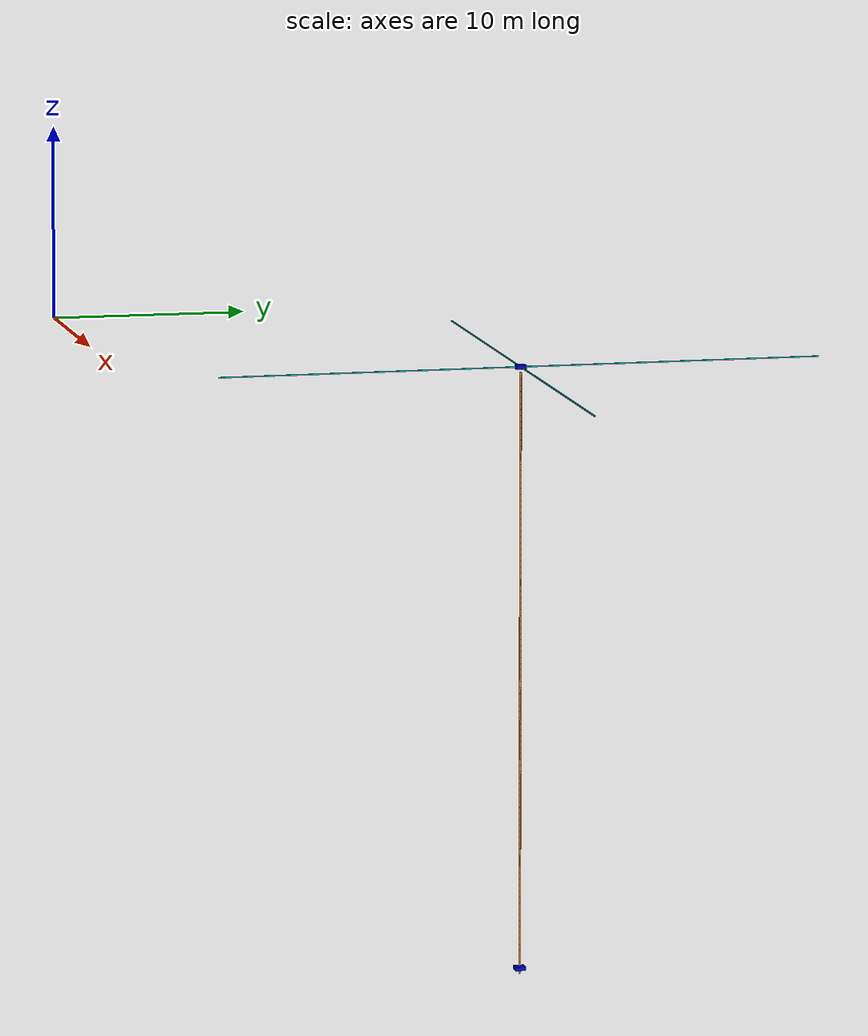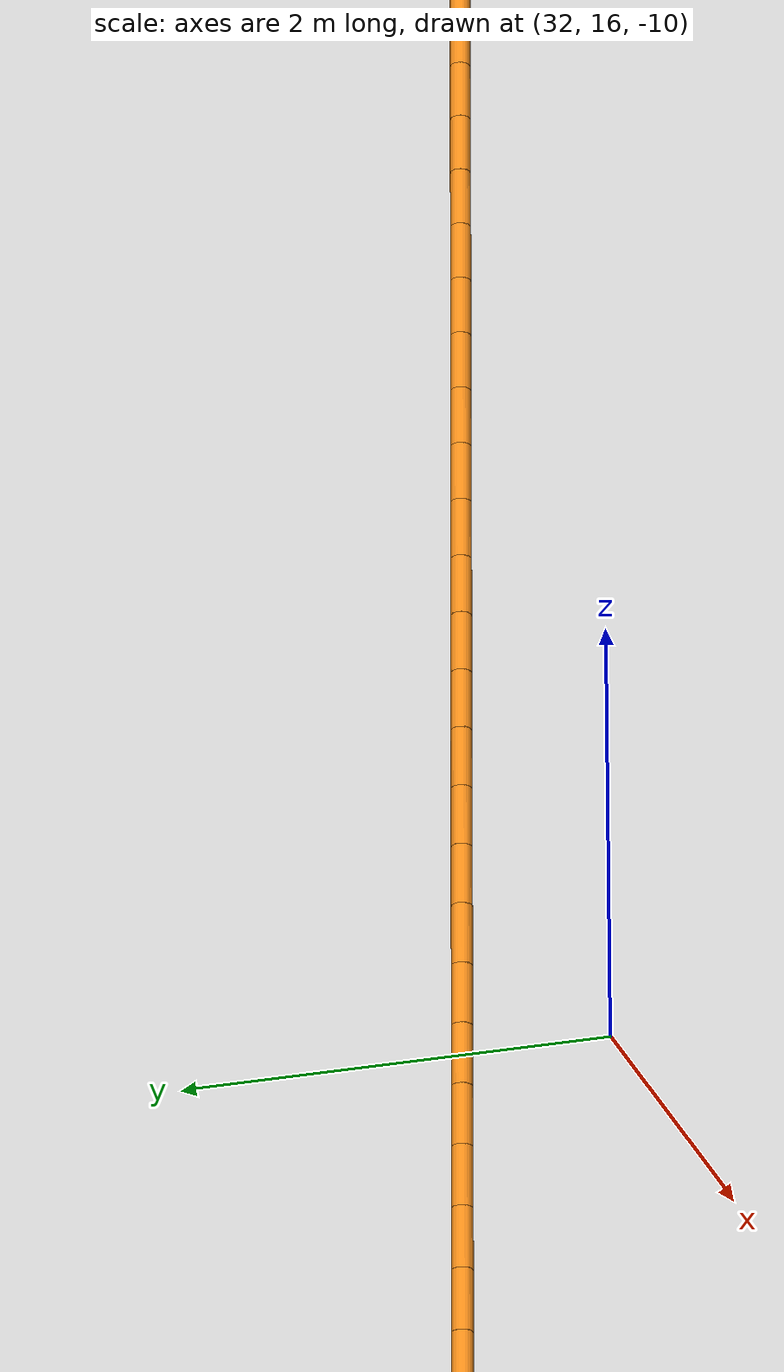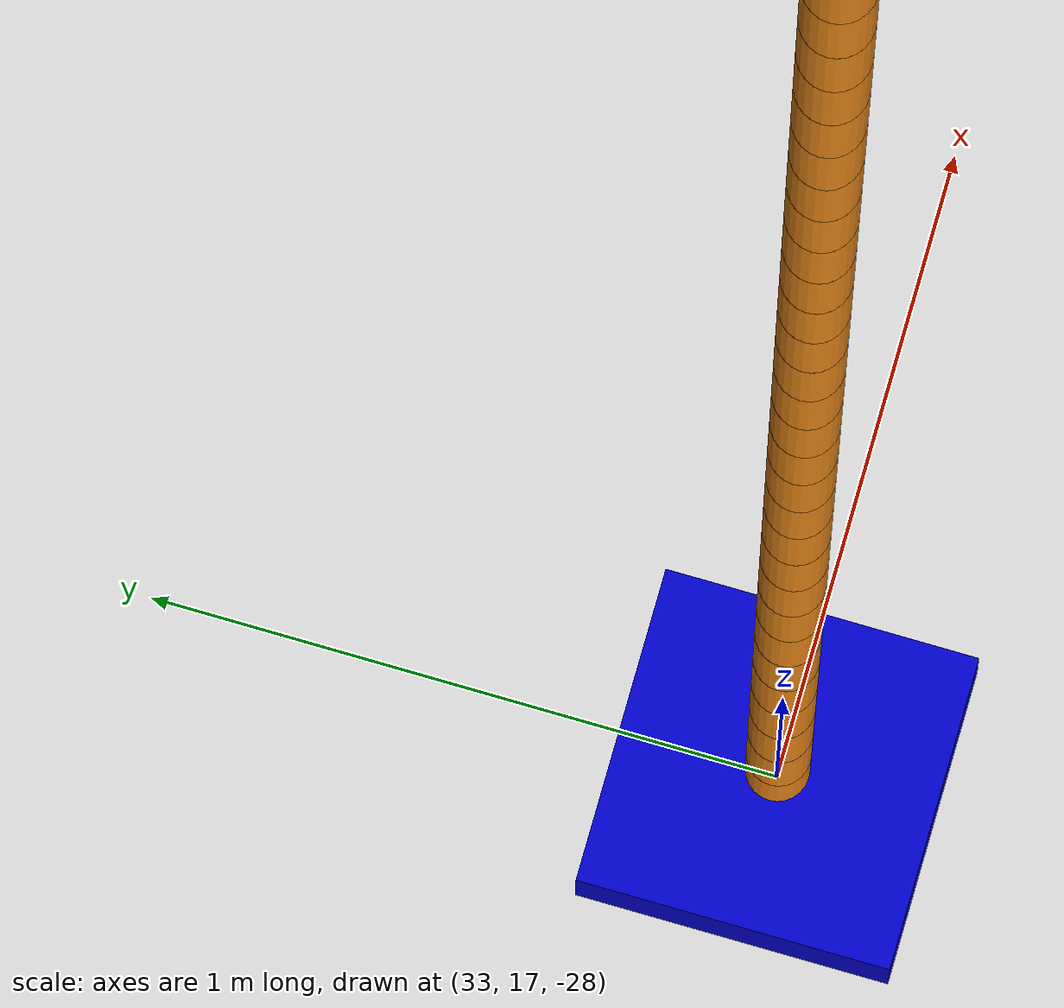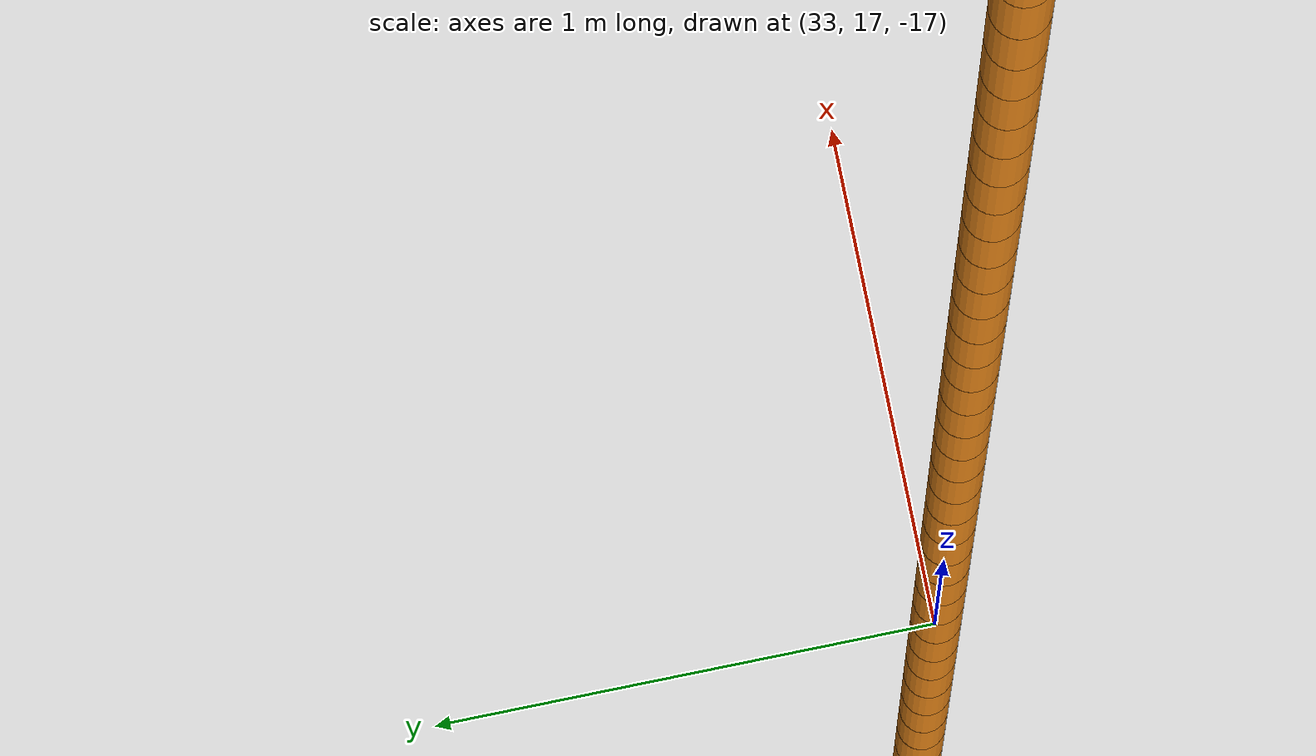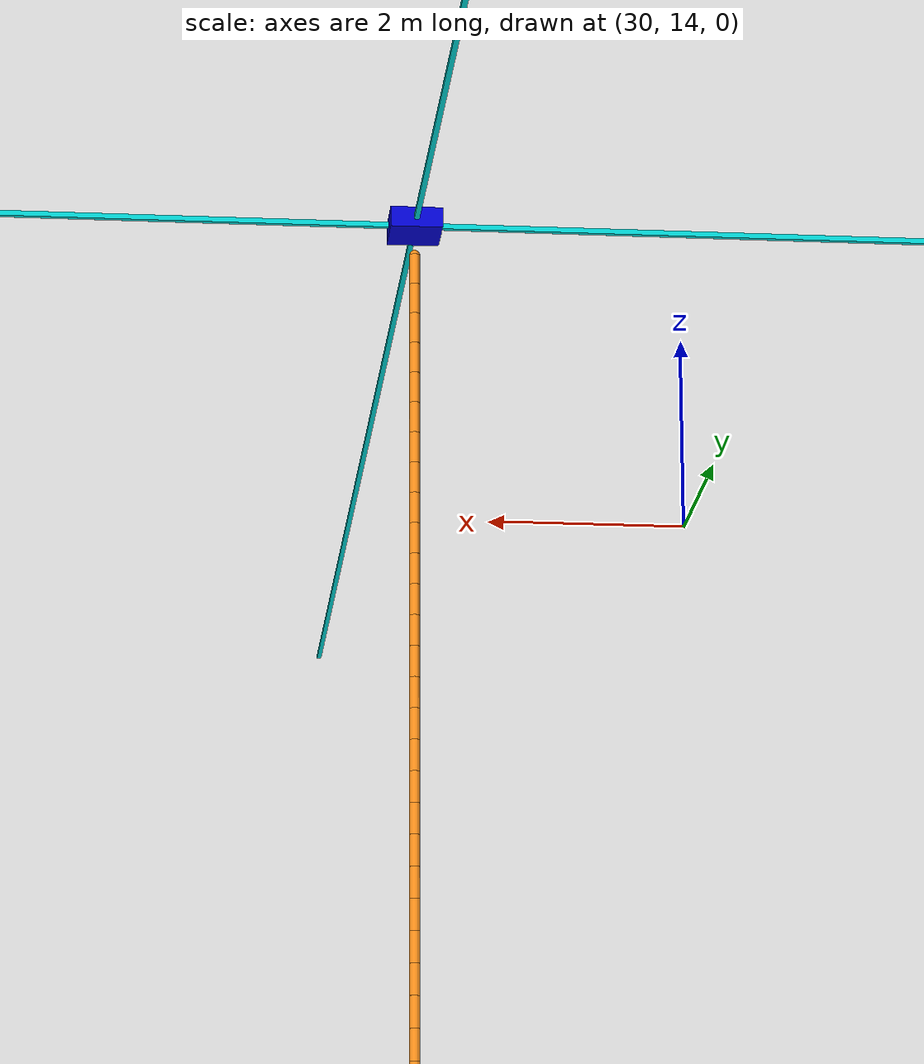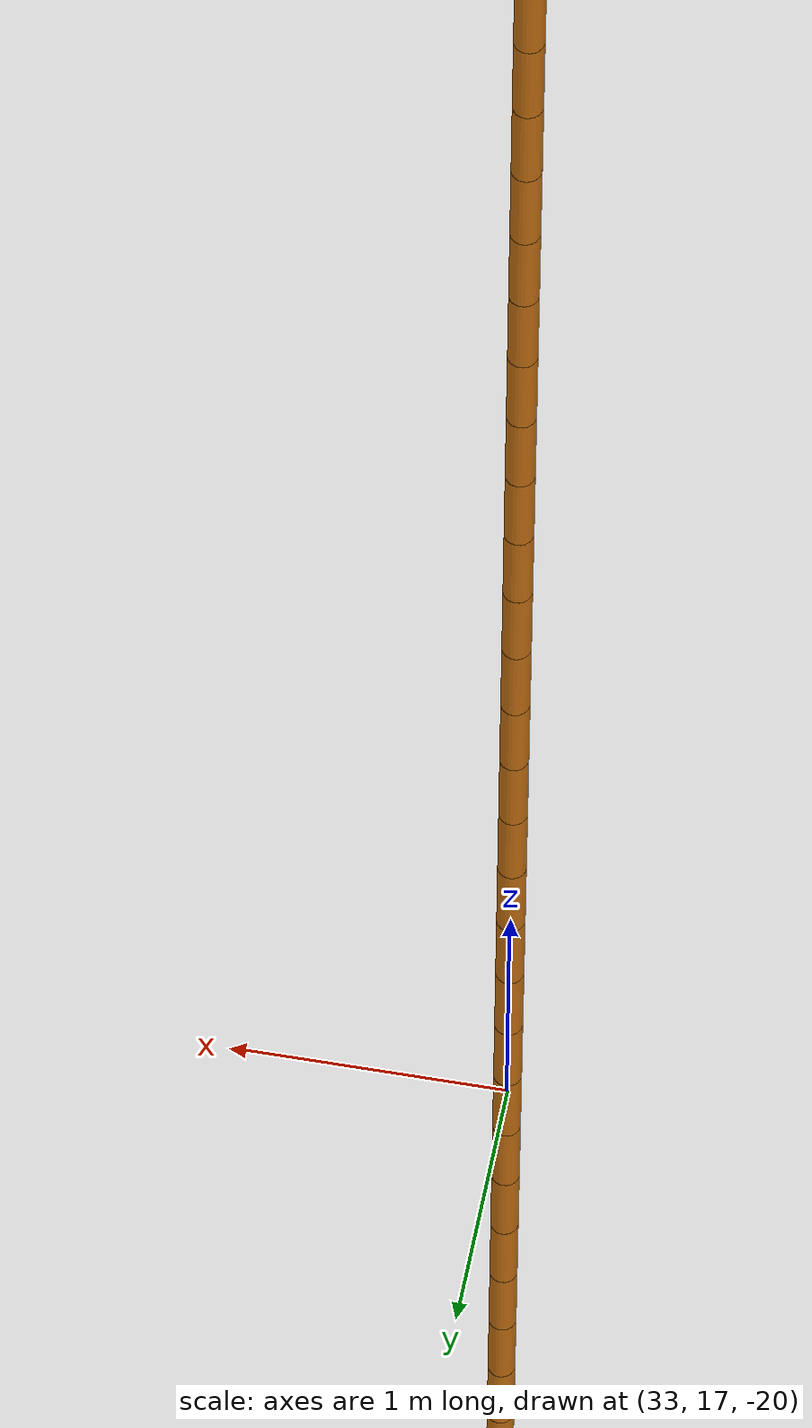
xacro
<?xml version="1.0" ?>
<!-- |    This document was autogenerated by xacro from cartpole.xacro.urdf            | -->
<!-- |    EDITING THIS FILE BY HAND IS NOT RECOMMENDED                                 | -->
<robot name="cartopole" xmlns:xacro="http://www.ros.org/wiki/xacro">
  <xacro:macro name="cable" params="sphere_name joint_nameA joint_nameB link_name link_name_pre count" >

    <link name="${sphere_name}">
      <inertial>
        <origin rpy="0.000000 0.000000 0.000000" xyz="0.000000 0.000000 0.000000"/>
        <mass value="0.0100000"/>
        <inertia ixx="0.010000" ixy="0.000000" ixz="0.000000" iyy="0.010000" iyz="0.000000" izz="0.010000"/>
      </inertial>
      <visual>
        <origin rpy="0.000000 0.000000 0.000000" xyz="0.000000 0.000000 0.000000"/>
        <geometry>
          <sphere radius="0.0500"/>
        </geometry>
      </visual>
      <collision name="${sphere_name}">
        <geometry>
          <sphere radius="0.0500"/>
        </geometry>
      </collision>
    </link>

    <joint name="${joint_nameA}" type="revolute">

      <child link="${sphere_name}"/>
      <parent link="${link_name_pre}"/>
      <axis xyz="0.000000 1.570000 0.000000"/>
      <limit lower="-1.700000" upper="1.700000" effort="1000.0"  velocity="30" stiffness="70000"/>
      <dynamics damping="0.100000" friction="0.100000"/>
      <origin xyz="0.000000 0.000000 ${count}"/>
    </joint>

    <link name="${link_name}">
      <inertial>
        <origin rpy="0.000000 -0.000000 0.000000" xyz="0.000000 0.000000 0.000000"/>
        <mass value="0.0100000"/>
        <inertia ixx="0.010000" ixy="0.000000" ixz="0.000000" iyy="0.010000" iyz="0.000000" izz="0.010000"/>
      </inertial>
      <visual>
        <origin rpy="0.000000 0.00000 0.000000" xyz="0.000000 0.000000 ${count/2}"/>
        <geometry>
          <cylinder length="${-count}" radius="0.0500"/>
        </geometry>
      </visual>
      <collision name="${link_name}">
        <origin rpy="0.000000 0.00000 0.000000" xyz="0.000000 0.000000 ${count/2}"/>
        <geometry>
          <cylinder length="${-count}" radius="0.0500"/>
        </geometry>
      </collision>
    </link>
    <joint name="${joint_nameB}" type="revolute">

      <child link="${link_name}"/>
      <parent link="${sphere_name}"/>
      <axis xyz="1.570000 0.000000 0.000000"/>
      <limit lower="-1.700000" upper="1.700000" effort="1000.0"  velocity="30" stiffness="70000"/>
      <dynamics damping="0.100000" friction="0.100000"/>
      <origin xyz="0.000000 0.000000 0.00000"/>
    </joint>
    <gazebo reference="${link_name}">
      <material>Gazebo/Orange</material>
    </gazebo>
    <gazebo reference="${sphere_name}">
      <material>Gazebo/Orange</material>
    </gazebo>
  </xacro:macro>

  <link name="world"/>
  <link name="slideBar">
    <visual>
      <geometry>
        <box size="30 0.05 0.05"/>
      </geometry>
      <origin xyz="0 0 0"/>
      <material name="green">
        <color rgba="0 0.8 .8 1"/>
      </material>
    </visual>
    <inertial>
      <mass value="10"/>
      <inertia ixx="1.0" ixy="0.0" ixz="0.0" iyy="1.0" iyz="0.0" izz="1.0"/>
    </inertial>
  </link>
  <link name="yslideBar">

    <visual>
      <geometry>
        <box size="30 0.05 0.05"/>
      </geometry>
      <origin xyz="0 0 0"/>
      <material name="green">
        <color rgba="0 0.8 .8 1"/>
      </material>
    </visual>
    <inertial>
      <mass value="10"/>
      <inertia ixx="1.0" ixy="0.0" ixz="0.0" iyy="1.0" iyz="0.0" izz="1.0"/>
    </inertial>
  </link>

  <link name="cart">
    <visual>
      <geometry>
        <box size="0.5 0.5 0.2"/>
      </geometry>
      <origin xyz="0 0 0"/>
      <material name="blue">
        <color rgba="0 0 .8 1"/>
      </material>
    </visual>
    <inertial>
      <mass value="1"/>
      <inertia ixx="1.0" ixy="0.0" ixz="0.0" iyy="1.0" iyz="0.0" izz="1.0"/>
    </inertial>
  </link>
  <link name="tail">

    <visual>
      <geometry>
        <box size="0.5 0.5 0.2"/>
      </geometry>
      <origin xyz="0 0 0"/>
      <material name="blue">
        <color rgba="0 0 .8 1"/>
      </material>
    </visual>
    <inertial>
      <mass value="0.1"/>
      <inertia ixx="1.0" ixy="0.0" ixz="0.0" iyy="1.0" iyz="0.0" izz="1.0"/>
    </inertial>
  </link>
  <joint name="world_to_base" type="fixed">
    <origin rpy="0 0 0" xyz="33 17 2"/>
    <parent link="world"/>
    <child link="slideBar"/>
  </joint>
  <joint name="x_to_y" type="prismatic">
    <axis xyz="1 0 0"/>
    <origin xyz="0.0 0.0 0.0" rpy="0 0 0"/>
    <parent link="yslideBar"/>
    <child link="cart"/>
    <limit effort="1000.0" lower="-15" upper="15" velocity="30"/>
    <dynamics damping="100.0" friction="10.0"/>
  </joint>
  <joint name="slider_to_cart" type="prismatic">
    <axis xyz="0 1 0"/>
    <origin xyz="0.0 0.0 0.0" rpy="0 0 1.57"/>
    <parent link="slideBar"/>
    <child link="yslideBar"/>
    <limit effort="1000.0" lower="-15" upper="15" velocity="30"/>
    <dynamics damping="100.0" friction="10.0"/>
  </joint>

  <joint name="tail_joint" type="fixed">
    <origin rpy="0 0 0" xyz="0 0 0"/>
    <parent link="link100"/>
    <child link="tail"/>
  </joint>

<xacro:cable	sphere_name=	"sphere1"	joint_nameA=	"jointA1"	joint_nameB=	"jointB1"	link_name=	"link1"	link_name_pre=	"cart"	count="-0.3"/>
<xacro:cable	sphere_name=	"sphere2"	joint_nameA=	"jointA2"	joint_nameB=	"jointB2"	link_name=	"link2"	link_name_pre=	"link1"	count="-0.3"/>
<xacro:cable	sphere_name=	"sphere3"	joint_nameA=	"jointA3"	joint_nameB=	"jointB3"	link_name=	"link3"	link_name_pre=	"link2"	count="-0.3"/>
<xacro:cable	sphere_name=	"sphere4"	joint_nameA=	"jointA4"	joint_nameB=	"jointB4"	link_name=	"link4"	link_name_pre=	"link3"	count="-0.3"/>
<xacro:cable	sphere_name=	"sphere5"	joint_nameA=	"jointA5"	joint_nameB=	"jointB5"	link_name=	"link5"	link_name_pre=	"link4"	count="-0.3"/>
<xacro:cable	sphere_name=	"sphere6"	joint_nameA=	"jointA6"	joint_nameB=	"jointB6"	link_name=	"link6"	link_name_pre=	"link5"	count="-0.3"/>
<xacro:cable	sphere_name=	"sphere7"	joint_nameA=	"jointA7"	joint_nameB=	"jointB7"	link_name=	"link7"	link_name_pre=	"link6"	count="-0.3"/>
<xacro:cable	sphere_name=	"sphere8"	joint_nameA=	"jointA8"	joint_nameB=	"jointB8"	link_name=	"link8"	link_name_pre=	"link7"	count="-0.3"/>
<xacro:cable	sphere_name=	"sphere9"	joint_nameA=	"jointA9"	joint_nameB=	"jointB9"	link_name=	"link9"	link_name_pre=	"link8"	count="-0.3"/>
<xacro:cable	sphere_name=	"sphere10"	joint_nameA=	"jointA10"	joint_nameB=	"jointB10"	link_name=	"link10"	link_name_pre=	"link9"	count="-0.3"/>
<xacro:cable	sphere_name=	"sphere11"	joint_nameA=	"jointA11"	joint_nameB=	"jointB11"	link_name=	"link11"	link_name_pre=	"link10"	count="-0.3"/>
<xacro:cable	sphere_name=	"sphere12"	joint_nameA=	"jointA12"	joint_nameB=	"jointB12"	link_name=	"link12"	link_name_pre=	"link11"	count="-0.3"/>
<xacro:cable	sphere_name=	"sphere13"	joint_nameA=	"jointA13"	joint_nameB=	"jointB13"	link_name=	"link13"	link_name_pre=	"link12"	count="-0.3"/>
<xacro:cable	sphere_name=	"sphere14"	joint_nameA=	"jointA14"	joint_nameB=	"jointB14"	link_name=	"link14"	link_name_pre=	"link13"	count="-0.3"/>
<xacro:cable	sphere_name=	"sphere15"	joint_nameA=	"jointA15"	joint_nameB=	"jointB15"	link_name=	"link15"	link_name_pre=	"link14"	count="-0.3"/>
<xacro:cable	sphere_name=	"sphere16"	joint_nameA=	"jointA16"	joint_nameB=	"jointB16"	link_name=	"link16"	link_name_pre=	"link15"	count="-0.3"/>
<xacro:cable	sphere_name=	"sphere17"	joint_nameA=	"jointA17"	joint_nameB=	"jointB17"	link_name=	"link17"	link_name_pre=	"link16"	count="-0.3"/>
<xacro:cable	sphere_name=	"sphere18"	joint_nameA=	"jointA18"	joint_nameB=	"jointB18"	link_name=	"link18"	link_name_pre=	"link17"	count="-0.3"/>
<xacro:cable	sphere_name=	"sphere19"	joint_nameA=	"jointA19"	joint_nameB=	"jointB19"	link_name=	"link19"	link_name_pre=	"link18"	count="-0.3"/>
<xacro:cable	sphere_name=	"sphere20"	joint_nameA=	"jointA20"	joint_nameB=	"jointB20"	link_name=	"link20"	link_name_pre=	"link19"	count="-0.3"/>
<xacro:cable	sphere_name=	"sphere21"	joint_nameA=	"jointA21"	joint_nameB=	"jointB21"	link_name=	"link21"	link_name_pre=	"link20"	count="-0.3"/>
<xacro:cable	sphere_name=	"sphere22"	joint_nameA=	"jointA22"	joint_nameB=	"jointB22"	link_name=	"link22"	link_name_pre=	"link21"	count="-0.3"/>
<xacro:cable	sphere_name=	"sphere23"	joint_nameA=	"jointA23"	joint_nameB=	"jointB23"	link_name=	"link23"	link_name_pre=	"link22"	count="-0.3"/>
<xacro:cable	sphere_name=	"sphere24"	joint_nameA=	"jointA24"	joint_nameB=	"jointB24"	link_name=	"link24"	link_name_pre=	"link23"	count="-0.3"/>
<xacro:cable	sphere_name=	"sphere25"	joint_nameA=	"jointA25"	joint_nameB=	"jointB25"	link_name=	"link25"	link_name_pre=	"link24"	count="-0.3"/>
<xacro:cable	sphere_name=	"sphere26"	joint_nameA=	"jointA26"	joint_nameB=	"jointB26"	link_name=	"link26"	link_name_pre=	"link25"	count="-0.3"/>
<xacro:cable	sphere_name=	"sphere27"	joint_nameA=	"jointA27"	joint_nameB=	"jointB27"	link_name=	"link27"	link_name_pre=	"link26"	count="-0.3"/>
<xacro:cable	sphere_name=	"sphere28"	joint_nameA=	"jointA28"	joint_nameB=	"jointB28"	link_name=	"link28"	link_name_pre=	"link27"	count="-0.3"/>
<xacro:cable	sphere_name=	"sphere29"	joint_nameA=	"jointA29"	joint_nameB=	"jointB29"	link_name=	"link29"	link_name_pre=	"link28"	count="-0.3"/>
<xacro:cable	sphere_name=	"sphere30"	joint_nameA=	"jointA30"	joint_nameB=	"jointB30"	link_name=	"link30"	link_name_pre=	"link29"	count="-0.3"/>
<xacro:cable	sphere_name=	"sphere31"	joint_nameA=	"jointA31"	joint_nameB=	"jointB31"	link_name=	"link31"	link_name_pre=	"link30"	count="-0.3"/>
<xacro:cable	sphere_name=	"sphere32"	joint_nameA=	"jointA32"	joint_nameB=	"jointB32"	link_name=	"link32"	link_name_pre=	"link31"	count="-0.3"/>
<xacro:cable	sphere_name=	"sphere33"	joint_nameA=	"jointA33"	joint_nameB=	"jointB33"	link_name=	"link33"	link_name_pre=	"link32"	count="-0.3"/>
<xacro:cable	sphere_name=	"sphere34"	joint_nameA=	"jointA34"	joint_nameB=	"jointB34"	link_name=	"link34"	link_name_pre=	"link33"	count="-0.3"/>
<xacro:cable	sphere_name=	"sphere35"	joint_nameA=	"jointA35"	joint_nameB=	"jointB35"	link_name=	"link35"	link_name_pre=	"link34"	count="-0.3"/>
<xacro:cable	sphere_name=	"sphere36"	joint_nameA=	"jointA36"	joint_nameB=	"jointB36"	link_name=	"link36"	link_name_pre=	"link35"	count="-0.3"/>
<xacro:cable	sphere_name=	"sphere37"	joint_nameA=	"jointA37"	joint_nameB=	"jointB37"	link_name=	"link37"	link_name_pre=	"link36"	count="-0.3"/>
<xacro:cable	sphere_name=	"sphere38"	joint_nameA=	"jointA38"	joint_nameB=	"jointB38"	link_name=	"link38"	link_name_pre=	"link37"	count="-0.3"/>
<xacro:cable	sphere_name=	"sphere39"	joint_nameA=	"jointA39"	joint_nameB=	"jointB39"	link_name=	"link39"	link_name_pre=	"link38"	count="-0.3"/>
<xacro:cable	sphere_name=	"sphere40"	joint_nameA=	"jointA40"	joint_nameB=	"jointB40"	link_name=	"link40"	link_name_pre=	"link39"	count="-0.3"/>
<xacro:cable	sphere_name=	"sphere41"	joint_nameA=	"jointA41"	joint_nameB=	"jointB41"	link_name=	"link41"	link_name_pre=	"link40"	count="-0.3"/>
<xacro:cable	sphere_name=	"sphere42"	joint_nameA=	"jointA42"	joint_nameB=	"jointB42"	link_name=	"link42"	link_name_pre=	"link41"	count="-0.3"/>
<xacro:cable	sphere_name=	"sphere43"	joint_nameA=	"jointA43"	joint_nameB=	"jointB43"	link_name=	"link43"	link_name_pre=	"link42"	count="-0.3"/>
<xacro:cable	sphere_name=	"sphere44"	joint_nameA=	"jointA44"	joint_nameB=	"jointB44"	link_name=	"link44"	link_name_pre=	"link43"	count="-0.3"/>
<xacro:cable	sphere_name=	"sphere45"	joint_nameA=	"jointA45"	joint_nameB=	"jointB45"	link_name=	"link45"	link_name_pre=	"link44"	count="-0.3"/>
<xacro:cable	sphere_name=	"sphere46"	joint_nameA=	"jointA46"	joint_nameB=	"jointB46"	link_name=	"link46"	link_name_pre=	"link45"	count="-0.3"/>
<xacro:cable	sphere_name=	"sphere47"	joint_nameA=	"jointA47"	joint_nameB=	"jointB47"	link_name=	"link47"	link_name_pre=	"link46"	count="-0.3"/>
<xacro:cable	sphere_name=	"sphere48"	joint_nameA=	"jointA48"	joint_nameB=	"jointB48"	link_name=	"link48"	link_name_pre=	"link47"	count="-0.3"/>
<xacro:cable	sphere_name=	"sphere49"	joint_nameA=	"jointA49"	joint_nameB=	"jointB49"	link_name=	"link49"	link_name_pre=	"link48"	count="-0.3"/>
<xacro:cable	sphere_name=	"sphere50"	joint_nameA=	"jointA50"	joint_nameB=	"jointB50"	link_name=	"link50"	link_name_pre=	"link49"	count="-0.3"/>
<xacro:cable	sphere_name=	"sphere51"	joint_nameA=	"jointA51"	joint_nameB=	"jointB51"	link_name=	"link51"	link_name_pre=	"link50"	count="-0.3"/>
<xacro:cable	sphere_name=	"sphere52"	joint_nameA=	"jointA52"	joint_nameB=	"jointB52"	link_name=	"link52"	link_name_pre=	"link51"	count="-0.3"/>
<xacro:cable	sphere_name=	"sphere53"	joint_nameA=	"jointA53"	joint_nameB=	"jointB53"	link_name=	"link53"	link_name_pre=	"link52"	count="-0.3"/>
<xacro:cable	sphere_name=	"sphere54"	joint_nameA=	"jointA54"	joint_nameB=	"jointB54"	link_name=	"link54"	link_name_pre=	"link53"	count="-0.3"/>
<xacro:cable	sphere_name=	"sphere55"	joint_nameA=	"jointA55"	joint_nameB=	"jointB55"	link_name=	"link55"	link_name_pre=	"link54"	count="-0.3"/>
<xacro:cable	sphere_name=	"sphere56"	joint_nameA=	"jointA56"	joint_nameB=	"jointB56"	link_name=	"link56"	link_name_pre=	"link55"	count="-0.3"/>
<xacro:cable	sphere_name=	"sphere57"	joint_nameA=	"jointA57"	joint_nameB=	"jointB57"	link_name=	"link57"	link_name_pre=	"link56"	count="-0.3"/>
<xacro:cable	sphere_name=	"sphere58"	joint_nameA=	"jointA58"	joint_nameB=	"jointB58"	link_name=	"link58"	link_name_pre=	"link57"	count="-0.3"/>
<xacro:cable	sphere_name=	"sphere59"	joint_nameA=	"jointA59"	joint_nameB=	"jointB59"	link_name=	"link59"	link_name_pre=	"link58"	count="-0.3"/>
<xacro:cable	sphere_name=	"sphere60"	joint_nameA=	"jointA60"	joint_nameB=	"jointB60"	link_name=	"link60"	link_name_pre=	"link59"	count="-0.3"/>
<xacro:cable	sphere_name=	"sphere61"	joint_nameA=	"jointA61"	joint_nameB=	"jointB61"	link_name=	"link61"	link_name_pre=	"link60"	count="-0.3"/>
<xacro:cable	sphere_name=	"sphere62"	joint_nameA=	"jointA62"	joint_nameB=	"jointB62"	link_name=	"link62"	link_name_pre=	"link61"	count="-0.3"/>
<xacro:cable	sphere_name=	"sphere63"	joint_nameA=	"jointA63"	joint_nameB=	"jointB63"	link_name=	"link63"	link_name_pre=	"link62"	count="-0.3"/>
<xacro:cable	sphere_name=	"sphere64"	joint_nameA=	"jointA64"	joint_nameB=	"jointB64"	link_name=	"link64"	link_name_pre=	"link63"	count="-0.3"/>
<xacro:cable	sphere_name=	"sphere65"	joint_nameA=	"jointA65"	joint_nameB=	"jointB65"	link_name=	"link65"	link_name_pre=	"link64"	count="-0.3"/>
<xacro:cable	sphere_name=	"sphere66"	joint_nameA=	"jointA66"	joint_nameB=	"jointB66"	link_name=	"link66"	link_name_pre=	"link65"	count="-0.3"/>
<xacro:cable	sphere_name=	"sphere67"	joint_nameA=	"jointA67"	joint_nameB=	"jointB67"	link_name=	"link67"	link_name_pre=	"link66"	count="-0.3"/>
<xacro:cable	sphere_name=	"sphere68"	joint_nameA=	"jointA68"	joint_nameB=	"jointB68"	link_name=	"link68"	link_name_pre=	"link67"	count="-0.3"/>
<xacro:cable	sphere_name=	"sphere69"	joint_nameA=	"jointA69"	joint_nameB=	"jointB69"	link_name=	"link69"	link_name_pre=	"link68"	count="-0.3"/>
<xacro:cable	sphere_name=	"sphere70"	joint_nameA=	"jointA70"	joint_nameB=	"jointB70"	link_name=	"link70"	link_name_pre=	"link69"	count="-0.3"/>
<xacro:cable	sphere_name=	"sphere71"	joint_nameA=	"jointA71"	joint_nameB=	"jointB71"	link_name=	"link71"	link_name_pre=	"link70"	count="-0.3"/>
<xacro:cable	sphere_name=	"sphere72"	joint_nameA=	"jointA72"	joint_nameB=	"jointB72"	link_name=	"link72"	link_name_pre=	"link71"	count="-0.3"/>
<xacro:cable	sphere_name=	"sphere73"	joint_nameA=	"jointA73"	joint_nameB=	"jointB73"	link_name=	"link73"	link_name_pre=	"link72"	count="-0.3"/>
<xacro:cable	sphere_name=	"sphere74"	joint_nameA=	"jointA74"	joint_nameB=	"jointB74"	link_name=	"link74"	link_name_pre=	"link73"	count="-0.3"/>
<xacro:cable	sphere_name=	"sphere75"	joint_nameA=	"jointA75"	joint_nameB=	"jointB75"	link_name=	"link75"	link_name_pre=	"link74"	count="-0.3"/>
<xacro:cable	sphere_name=	"sphere76"	joint_nameA=	"jointA76"	joint_nameB=	"jointB76"	link_name=	"link76"	link_name_pre=	"link75"	count="-0.3"/>
<xacro:cable	sphere_name=	"sphere77"	joint_nameA=	"jointA77"	joint_nameB=	"jointB77"	link_name=	"link77"	link_name_pre=	"link76"	count="-0.3"/>
<xacro:cable	sphere_name=	"sphere78"	joint_nameA=	"jointA78"	joint_nameB=	"jointB78"	link_name=	"link78"	link_name_pre=	"link77"	count="-0.3"/>
<xacro:cable	sphere_name=	"sphere79"	joint_nameA=	"jointA79"	joint_nameB=	"jointB79"	link_name=	"link79"	link_name_pre=	"link78"	count="-0.3"/>
<xacro:cable	sphere_name=	"sphere80"	joint_nameA=	"jointA80"	joint_nameB=	"jointB80"	link_name=	"link80"	link_name_pre=	"link79"	count="-0.3"/>
<xacro:cable	sphere_name=	"sphere81"	joint_nameA=	"jointA81"	joint_nameB=	"jointB81"	link_name=	"link81"	link_name_pre=	"link80"	count="-0.3"/>
<xacro:cable	sphere_name=	"sphere82"	joint_nameA=	"jointA82"	joint_nameB=	"jointB82"	link_name=	"link82"	link_name_pre=	"link81"	count="-0.3"/>
<xacro:cable	sphere_name=	"sphere83"	joint_nameA=	"jointA83"	joint_nameB=	"jointB83"	link_name=	"link83"	link_name_pre=	"link82"	count="-0.3"/>
<xacro:cable	sphere_name=	"sphere84"	joint_nameA=	"jointA84"	joint_nameB=	"jointB84"	link_name=	"link84"	link_name_pre=	"link83"	count="-0.3"/>
<xacro:cable	sphere_name=	"sphere85"	joint_nameA=	"jointA85"	joint_nameB=	"jointB85"	link_name=	"link85"	link_name_pre=	"link84"	count="-0.3"/>
<xacro:cable	sphere_name=	"sphere86"	joint_nameA=	"jointA86"	joint_nameB=	"jointB86"	link_name=	"link86"	link_name_pre=	"link85"	count="-0.3"/>
<xacro:cable	sphere_name=	"sphere87"	joint_nameA=	"jointA87"	joint_nameB=	"jointB87"	link_name=	"link87"	link_name_pre=	"link86"	count="-0.3"/>
<xacro:cable	sphere_name=	"sphere88"	joint_nameA=	"jointA88"	joint_nameB=	"jointB88"	link_name=	"link88"	link_name_pre=	"link87"	count="-0.3"/>
<xacro:cable	sphere_name=	"sphere89"	joint_nameA=	"jointA89"	joint_nameB=	"jointB89"	link_name=	"link89"	link_name_pre=	"link88"	count="-0.3"/>
<xacro:cable	sphere_name=	"sphere90"	joint_nameA=	"jointA90"	joint_nameB=	"jointB90"	link_name=	"link90"	link_name_pre=	"link89"	count="-0.3"/>
<xacro:cable	sphere_name=	"sphere91"	joint_nameA=	"jointA91"	joint_nameB=	"jointB91"	link_name=	"link91"	link_name_pre=	"link90"	count="-0.3"/>
<xacro:cable	sphere_name=	"sphere92"	joint_nameA=	"jointA92"	joint_nameB=	"jointB92"	link_name=	"link92"	link_name_pre=	"link91"	count="-0.3"/>
<xacro:cable	sphere_name=	"sphere93"	joint_nameA=	"jointA93"	joint_nameB=	"jointB93"	link_name=	"link93"	link_name_pre=	"link92"	count="-0.3"/>
<xacro:cable	sphere_name=	"sphere94"	joint_nameA=	"jointA94"	joint_nameB=	"jointB94"	link_name=	"link94"	link_name_pre=	"link93"	count="-0.3"/>
<xacro:cable	sphere_name=	"sphere95"	joint_nameA=	"jointA95"	joint_nameB=	"jointB95"	link_name=	"link95"	link_name_pre=	"link94"	count="-0.3"/>
<xacro:cable	sphere_name=	"sphere96"	joint_nameA=	"jointA96"	joint_nameB=	"jointB96"	link_name=	"link96"	link_name_pre=	"link95"	count="-0.3"/>
<xacro:cable	sphere_name=	"sphere97"	joint_nameA=	"jointA97"	joint_nameB=	"jointB97"	link_name=	"link97"	link_name_pre=	"link96"	count="-0.3"/>
<xacro:cable	sphere_name=	"sphere98"	joint_nameA=	"jointA98"	joint_nameB=	"jointB98"	link_name=	"link98"	link_name_pre=	"link97"	count="-0.3"/>
<xacro:cable	sphere_name=	"sphere99"	joint_nameA=	"jointA99"	joint_nameB=	"jointB99"	link_name=	"link99"	link_name_pre=	"link98"	count="-0.3"/>
<xacro:cable	sphere_name=	"sphere100"	joint_nameA=	"jointA100"	joint_nameB=	"jointB100"	link_name=	"link100"	link_name_pre=	"link99"	count="-0.3"/>

  <ros2_control name="GazeboSystem" type="system">
    <hardware>
      <plugin>gazebo_ros2_control/GazeboSystem</plugin>
    </hardware>
    <joint name="slider_to_cart">
      <command_interface name="effort">
        <param name="min">-1000</param>
        <param name="max">1000</param>
      </command_interface>
      <state_interface name="position">
        <param name="initial_value">1.0</param>
      </state_interface>
      <state_interface name="velocity"/>
      <state_interface name="effort"/>
    </joint>

    <joint name="x_to_y">
      <command_interface name="effort">
        <param name="min">-1000</param>
        <param name="max">1000</param>
      </command_interface>
      <state_interface name="position"/>
      <state_interface name="velocity"/>
      <state_interface name="effort"/>
    </joint>

  </ros2_control>

  <gazebo>
    <plugin filename="libgazebo_ros2_control.so" name="gazebo_ros2_control">
      <parameters>$(find marscar_gazebo_ros2)/config/cartpole_controller_effort.yaml</parameters>
    </plugin>

  </gazebo>
  <gazebo reference="cart">
    <material>Gazebo/Orange</material>
  </gazebo>

  <gazebo reference="slideBar">
    <material>Gazebo/Red</material>
  </gazebo>

  <gazebo reference="yslideBar">
    <material>Gazebo/Blue</material>
  </gazebo>
</robot>
